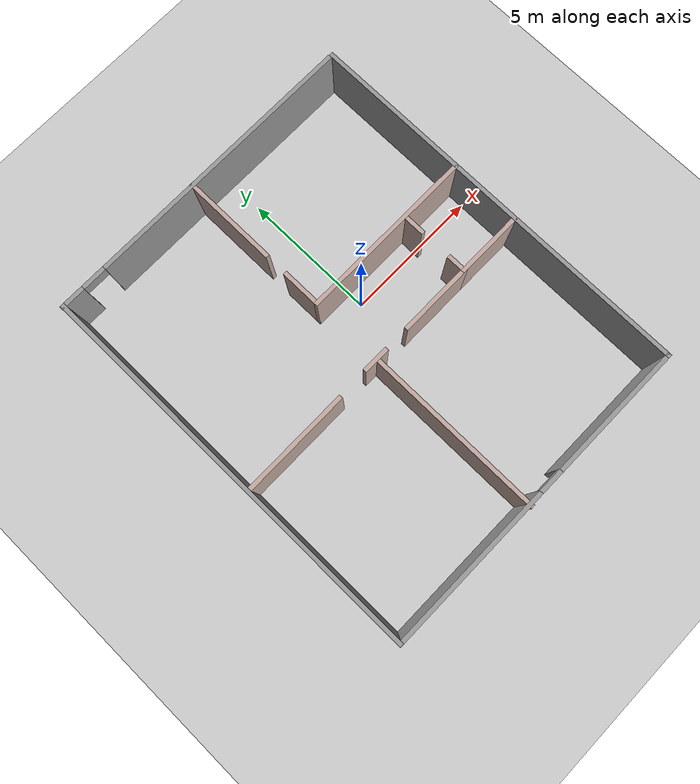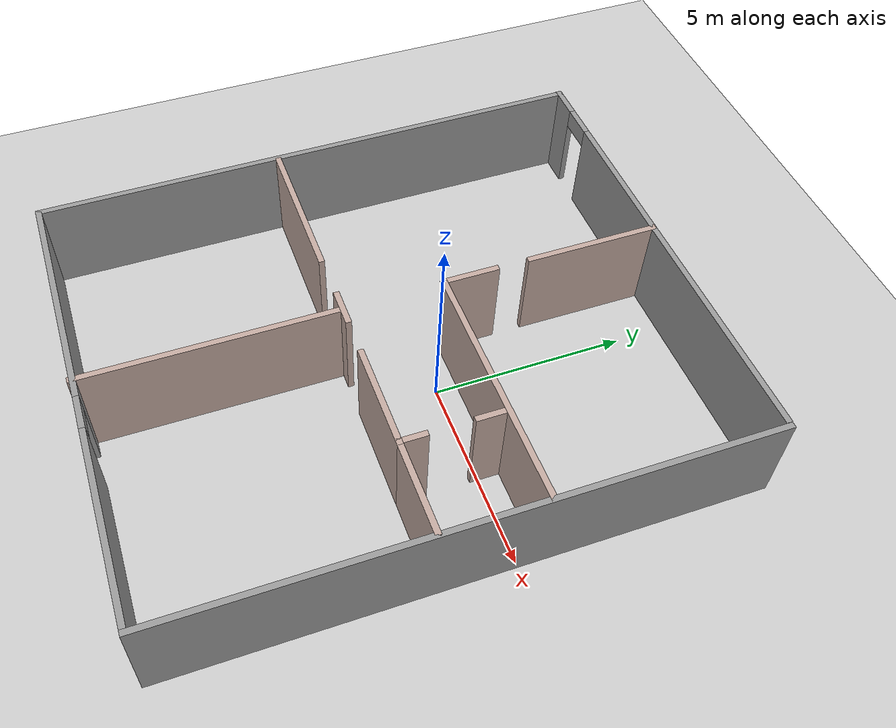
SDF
<?xml version="1.0"?>
<sdf version="1.7">
  <world name="default">
    <!-- 太阳光 -->
    <light name="sun" type="directional">
      <cast_shadows>1</cast_shadows>
      <pose>0 0 10 0 -0 0</pose>
      <diffuse>0.8 0.8 0.8 1</diffuse>
      <specular>0.2 0.2 0.2 1</specular>
      <attenuation>
        <range>1000</range>
        <constant>0.9</constant>
        <linear>0.01</linear>
        <quadratic>0.001</quadratic>
      </attenuation>
      <direction>-0.5 0.1 -0.9</direction>
    </light>

    <!-- 地面 -->
    <model name="ground_plane">
      <static>1</static>
      <link name="link">
        <collision name="collision">
          <geometry>
            <plane>
              <normal>0 0 1</normal>
              <size>100 100</size>
            </plane>
          </geometry>
          <surface>
            <friction>
              <ode>
                <mu>100</mu>
                <mu2>50</mu2>
              </ode>
            </friction>
          </surface>
        </collision>
        <visual name="visual">
          <geometry>
            <plane>
              <normal>0 0 1</normal>
              <size>100 100</size>
            </plane>
          </geometry>
          <material>
            <script>
              <uri>file://media/materials/scripts/gazebo.material</uri>
              <name>Gazebo/Grey</name>
            </script>
          </material>
        </visual>
      </link>
    </model>

    <!-- 全局物理/环境参数 -->
    <gravity>0 0 -9.8</gravity>
    <magnetic_field>6e-06 2.3e-05 -4.2e-05</magnetic_field>
    <atmosphere type="adiabatic"/>
    <physics type="ode">
      <max_step_size>0.001</max_step_size>
      <real_time_factor>1</real_time_factor>
      <real_time_update_rate>1000</real_time_update_rate>
    </physics>
    <scene>
      <ambient>0.4 0.4 0.4 1</ambient>
      <background>0.7 0.7 0.7 1</background>
      <shadows>1</shadows>
    </scene>
    <audio>
      <device>default</device>
    </audio>
    <wind/>
    <spherical_coordinates>
      <surface_model>EARTH_WGS84</surface_model>
      <latitude_deg>0</latitude_deg>
      <longitude_deg>0</longitude_deg>
      <elevation>0</elevation>
      <heading_deg>0</heading_deg>
    </spherical_coordinates>

    <!-- ===== 房屋墙体结构（保留全部） ===== -->
    <model name="my_home">
      <pose>-0.960165 -1.06217 0 0 -0 0</pose>
      <link name="Wall_123">
        <collision name="Wall_123_Collision">
          <geometry><box><size>14.6879 0.15 2.5</size></box></geometry>
          <pose>0 0 1.25 0 -0 0</pose>
        </collision>
        <visual name="Wall_123_Visual">
          <pose>0 0 1.25 0 -0 0</pose>
          <geometry><box><size>14.6879 0.15 2.5</size></box></geometry>
          <material>
            <script><uri>file://media/materials/scripts/gazebo.material</uri><name>Gazebo/Grey</name></script>
            <ambient>1 1 1 1</ambient>
          </material>
        </visual>
        <pose>-5.97202 0.04656 0 0 -0 -1.56865</pose>
      </link>
      <link name="Wall_124">
        <pose>0.015596 -7.26903 0 0 -0 -0.005223</pose>
        <visual name="Wall_124_Visual_0">
          <pose>-2.95945 0 1.25 0 -0 0</pose>
          <geometry><box><size>6.17531 0.15 2.5</size></box></geometry>
          <material><script><uri>file://media/materials/scripts/gazebo.material</uri><name>Gazebo/Grey</name></script><ambient>1 1 1 1</ambient></material>
        </visual>
        <collision name="Wall_124_Collision_0">
          <geometry><box><size>6.17531 0.15 2.5</size></box></geometry>
          <pose>-2.95945 0 1.25 0 -0 0</pose>
        </collision>
        <visual name="Wall_124_Visual_1">
          <pose>3.53766 0 1.25 0 -0 0</pose>
          <geometry><box><size>5.01889 0.15 2.5</size></box></geometry>
          <material><script><uri>file://media/materials/scripts/gazebo.material</uri><name>Gazebo/Grey</name></script><ambient>1 1 1 1</ambient></material>
        </visual>
        <collision name="Wall_124_Collision_1">
          <geometry><box><size>5.01889 0.15 2.5</size></box></geometry>
          <pose>3.53766 0 1.25 0 -0 0</pose>
        </collision>
        <visual name="Wall_124_Visual_2">
          <pose>0.578212 0 2.25 0 -0 0</pose>
          <geometry><box><size>0.9 0.15 0.5</size></box></geometry>
          <material><script><uri>file://media/materials/scripts/gazebo.material</uri><name>Gazebo/Grey</name></script><ambient>1 1 1 1</ambient></material>
        </visual>
        <collision name="Wall_124_Collision_2">
          <geometry><box><size>0.9 0.15 0.5</size></box></geometry>
          <pose>0.578212 0 2.25 0 -0 0</pose>
        </collision>
      </link>
      <link name="Wall_125">
        <collision name="Wall_125_Collision">
          <geometry><box><size>14.75 0.15 2.5</size></box></geometry>
          <pose>0 0 1.25 0 -0 0</pose>
        </collision>
        <visual name="Wall_125_Visual">
          <pose>0 0 1.25 0 -0 0</pose>
          <geometry><box><size>14.75 0.15 2.5</size></box></geometry>
          <material><script><uri>file://media/materials/scripts/gazebo.material</uri><name>Gazebo/Grey</name></script><ambient>1 1 1 1</ambient></material>
        </visual>
        <pose>6.00321 -0.000228 0 0 -0 1.5708</pose>
      </link>
      <link name="Wall_129">
        <pose>-0.078212 7.31537 0 0 -0 0</pose>
        <visual name="Wall_129_Visual_0">
          <pose>-5.54026 0 1.25 0 -0 0</pose>
          <geometry><box><size>0.919471 0.15 2.5</size></box></geometry>
          <material><script><uri>file://media/materials/scripts/gazebo.material</uri><name>Gazebo/Grey</name></script><ambient>1 1 1 1</ambient></material>
        </visual>
        <collision name="Wall_129_Collision_0">
          <geometry><box><size>0.919471 0.15 2.5</size></box></geometry>
          <pose>-5.54026 0 1.25 0 -0 0</pose>
        </collision>
        <visual name="Wall_129_Visual_1">
          <pose>0.909735 0 1.25 0 -0 0</pose>
          <geometry><box><size>10.1805 0.15 2.5</size></box></geometry>
          <material><script><uri>file://media/materials/scripts/gazebo.material</uri><name>Gazebo/Grey</name></script><ambient>1 1 1 1</ambient></material>
        </visual>
        <collision name="Wall_129_Collision_1">
          <geometry><box><size>10.1805 0.15 2.5</size></box></geometry>
          <pose>0.909735 0 1.25 0 -0 0</pose>
        </collision>
        <visual name="Wall_129_Visual_2">
          <pose>-4.63053 0 2.25 0 -0 0</pose>
          <geometry><box><size>0.9 0.15 0.5</size></box></geometry>
          <material><script><uri>file://media/materials/scripts/gazebo.material</uri><name>Gazebo/Grey</name></script><ambient>1 1 1 1</ambient></material>
        </visual>
        <collision name="Wall_129_Collision_2">
          <geometry><box><size>0.9 0.15 0.5</size></box></geometry>
          <pose>-4.63053 0 2.25 0 -0 0</pose>
        </collision>
      </link>
      <link name="Wall_132">
        <collision name="Wall_132_Collision">
          <geometry><box><size>6.5 0.15 2.5</size></box></geometry>
          <pose>0 0 1.25 0 -0 0</pose>
        </collision>
        <visual name="Wall_132_Visual">
          <pose>0 0 1.25 0 -0 0</pose>
          <geometry><box><size>6.5 0.15 2.5</size></box></geometry>
          <material><script><uri>file://media/materials/scripts/gazebo.material</uri><name>Gazebo/Grey</name></script><ambient>0.760784 0.662745 0.627451 1</ambient></material>
        </visual>
        <pose>2.78636 1.68464 0 0 -0 0</pose>
      </link>
      <link name="Wall_136">
        <collision name="Wall_136_Collision">
          <geometry><box><size>0.75 0.15 2.5</size></box></geometry>
          <pose>0 0 1.25 0 -0 0</pose>
        </collision>
        <visual name="Wall_136_Visual">
          <pose>0 0 1.25 0 -0 0</pose>
          <geometry><box><size>0.75 0.15 2.5</size></box></geometry>
          <material><script><uri>file://media/materials/scripts/gazebo.material</uri><name>Gazebo/Grey</name></script><ambient>0.760784 0.662745 0.627451 1</ambient></material>
        </visual>
        <pose>3.60895 1.2453 0 0 -0 -1.5708</pose>
      </link>
      <link name="Wall_138">
        <collision name="Wall_138_Collision">
          <geometry><box><size>2.5 0.15 2.5</size></box></geometry>
          <pose>0 0 1.25 0 -0 0</pose>
        </collision>
        <visual name="Wall_138_Visual">
          <pose>0 0 1.25 0 -0 0</pose>
          <geometry><box><size>2.5 0.15 2.5</size></box></geometry>
          <material><script><uri>file://media/materials/scripts/gazebo.material</uri><name>Gazebo/Grey</name></script><ambient>0.760784 0.662745 0.627451 1</ambient></material>
        </visual>
        <pose>4.78395 -0.887683 0 0 -0 3.14159</pose>
      </link>
      <link name="Wall_141">
        <collision name="Wall_141_Collision">
          <geometry><box><size>0.75 0.15 2.5</size></box></geometry>
          <pose>0 0 1.25 0 -0 0</pose>
        </collision>
        <visual name="Wall_141_Visual">
          <pose>0 0 1.25 0 -0 0</pose>
          <geometry><box><size>0.75 0.15 2.5</size></box></geometry>
          <material><script><uri>file://media/materials/scripts/gazebo.material</uri><name>Gazebo/Grey</name></script><ambient>0.760784 0.662745 0.627451 1</ambient></material>
        </visual>
        <pose>3.60895 -0.587683 0 0 -0 1.5708</pose>
      </link>
      <link name="Wall_143">
        <collision name="Wall_143_Collision">
          <geometry><box><size>2.75 0.15 2.5</size></box></geometry>
          <pose>0 0 1.25 0 -0 0</pose>
        </collision>
        <visual name="Wall_143_Visual">
          <pose>0 0 1.25 0 -0 0</pose>
          <geometry><box><size>2.75 0.15 2.5</size></box></geometry>
          <material><script><uri>file://media/materials/scripts/gazebo.material</uri><name>Gazebo/Grey</name></script><ambient>0.760784 0.662745 0.627451 1</ambient></material>
        </visual>
        <pose>2.32454 -0.887683 0 0 -0 3.14159</pose>
      </link>
      <link name="Wall_145">
        <collision name="Wall_145_Collision">
          <geometry><box><size>1 0.15 2.5</size></box></geometry>
          <pose>0 0 1.25 0 -0 0</pose>
        </collision>
        <visual name="Wall_145_Visual">
          <pose>0 0 1.25 0 -0 0</pose>
          <geometry><box><size>1 0.15 2.5</size></box></geometry>
          <material><script><uri>file://media/materials/scripts/gazebo.material</uri><name>Gazebo/Grey</name></script><ambient>0.760784 0.662745 0.627451 1</ambient></material>
        </visual>
        <pose>-0.408143 -0.887683 0 0 -0 3.14159</pose>
      </link>
      <link name="Wall_147">
        <collision name="Wall_147_Collision">
          <geometry><box><size>4 0.15 2.5</size></box></geometry>
          <pose>0 0 1.25 0 -0 0</pose>
        </collision>
        <visual name="Wall_147_Visual">
          <pose>0 0 1.25 0 -0 0</pose>
          <geometry><box><size>4 0.15 2.5</size></box></geometry>
          <material><script><uri>file://media/materials/scripts/gazebo.material</uri><name>Gazebo/Grey</name></script><ambient>0.760784 0.662745 0.627451 1</ambient></material>
        </visual>
        <pose>-3.96682 -0.918875 0 0 -0 3.14159</pose>
      </link>
      <link name="Wall_151">
        <collision name="Wall_151_Collision">
          <geometry><box><size>6.5 0.15 2.5</size></box></geometry>
          <pose>0 0 1.25 0 -0 0</pose>
        </collision>
        <visual name="Wall_151_Visual">
          <pose>0 0 1.25 0 -0 0</pose>
          <geometry><box><size>6.5 0.15 2.5</size></box></geometry>
          <material><script><uri>file://media/materials/scripts/gazebo.material</uri><name>Gazebo/Grey</name></script><ambient>0.760784 0.662745 0.627451 1</ambient></material>
        </visual>
        <pose>-0.357448 -4.14066 0 0 -0 -1.5708</pose>
      </link>
      <link name="Wall_153">
        <collision name="Wall_153_Collision">
          <geometry><box><size>1.5 0.15 2.5</size></box></geometry>
          <pose>0 0 1.25 0 -0 0</pose>
        </collision>
        <visual name="Wall_153_Visual">
          <pose>0 0 1.25 0 -0 0</pose>
          <geometry><box><size>1.5 0.15 2.5</size></box></geometry>
          <material><script><uri>file://media/materials/scripts/gazebo.material</uri><name>Gazebo/Grey</name></script><ambient>0.760784 0.662745 0.627451 1</ambient></material>
        </visual>
        <pose>-0.38864 2.35964 0 0 -0 1.5708</pose>
      </link>
      <link name="Wall_155">
        <collision name="Wall_155_Collision">
          <geometry><box><size>3.5 0.15 2.5</size></box></geometry>
          <pose>0 0 1.25 0 -0 0</pose>
        </collision>
        <visual name="Wall_155_Visual">
          <pose>0 0 1.25 0 -0 0</pose>
          <geometry><box><size>3.5 0.15 2.5</size></box></geometry>
          <material><script><uri>file://media/materials/scripts/gazebo.material</uri><name>Gazebo/Grey</name></script><ambient>0.760784 0.662745 0.627451 1</ambient></material>
        </visual>
        <pose>-0.38864 5.62524 0 0 -0 -1.5708</pose>
      </link>
      <static>1</static>
    </model>

    <!-- GUI 相机视角 -->
    <gui fullscreen="0">
      <camera name="user_camera">
        <pose>15.3783 -14.2607 16.4079 0 0.576823 2.53062</pose>
        <view_controller>orbit</view_controller>
        <projection_type>perspective</projection_type>
      </camera>
    </gui>
  </world>
</sdf>
